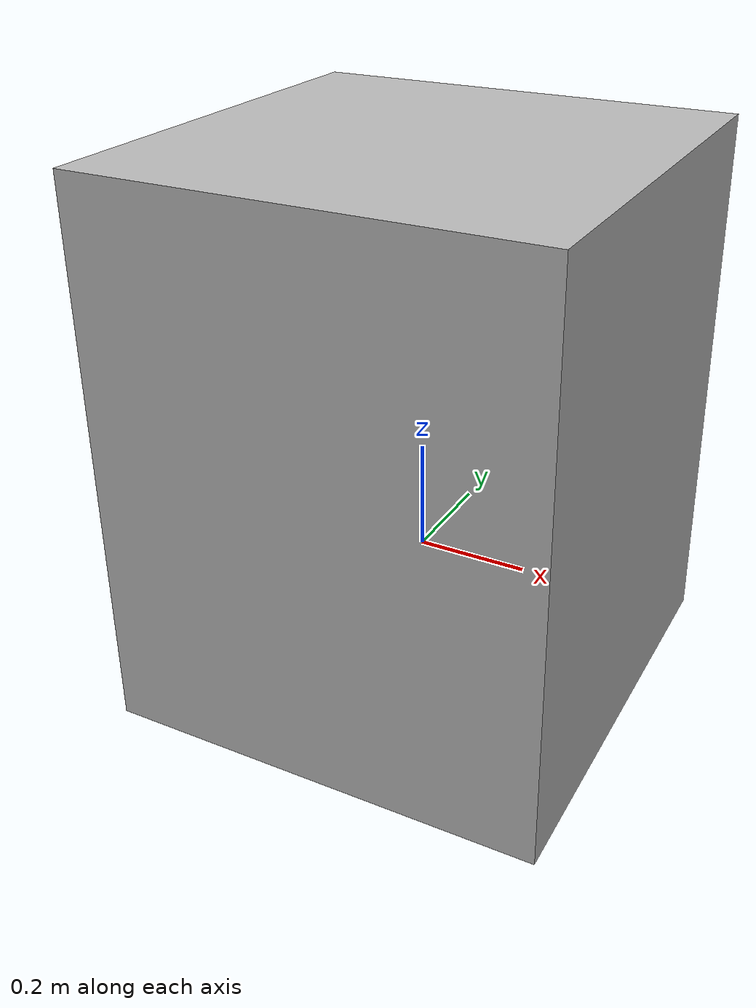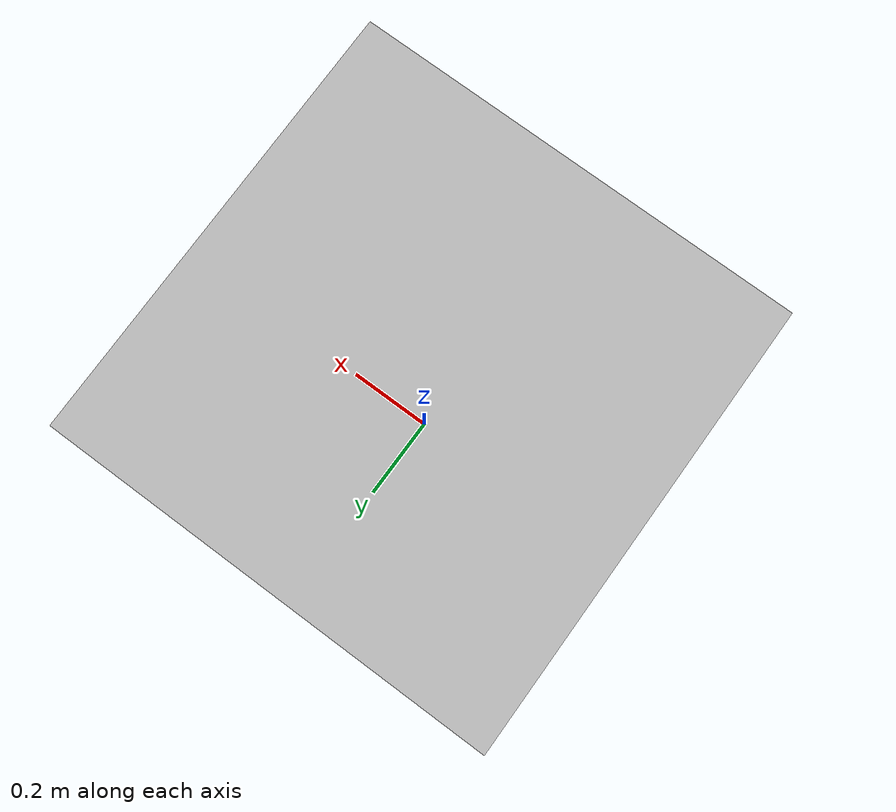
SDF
<?xml version='1.0'?>
<sdf version='1.4'>
    <model name='block'>
    <static>true</static>

        <link name='link0'>
            <pose>0 0 0.25 0 0 0</pose>

            <visual name='visual'>
                <geometry>
                    <mesh>
                        <uri>./meshes/block.obj</uri>
                    </mesh>
                </geometry>

            </visual>

            <collision name='collision'>
                <pose>0 0 0 0 0 0</pose>
                <geometry>
                    <box>
                        <size>0.4 0.4 0.5</size>
                    </box>
                </geometry>
            </collision>

        </link>

    </model>

</sdf>
